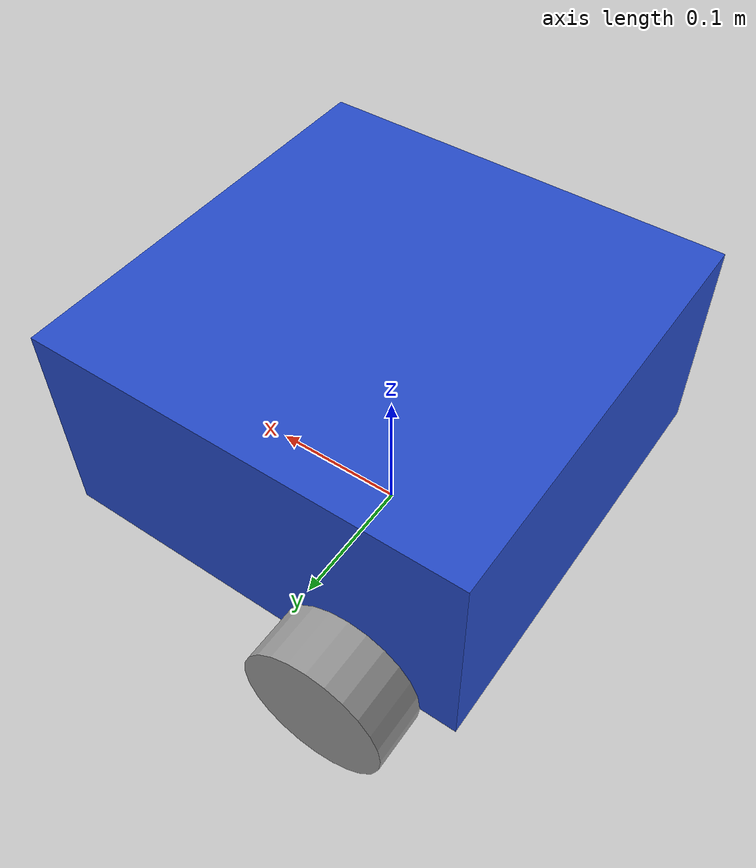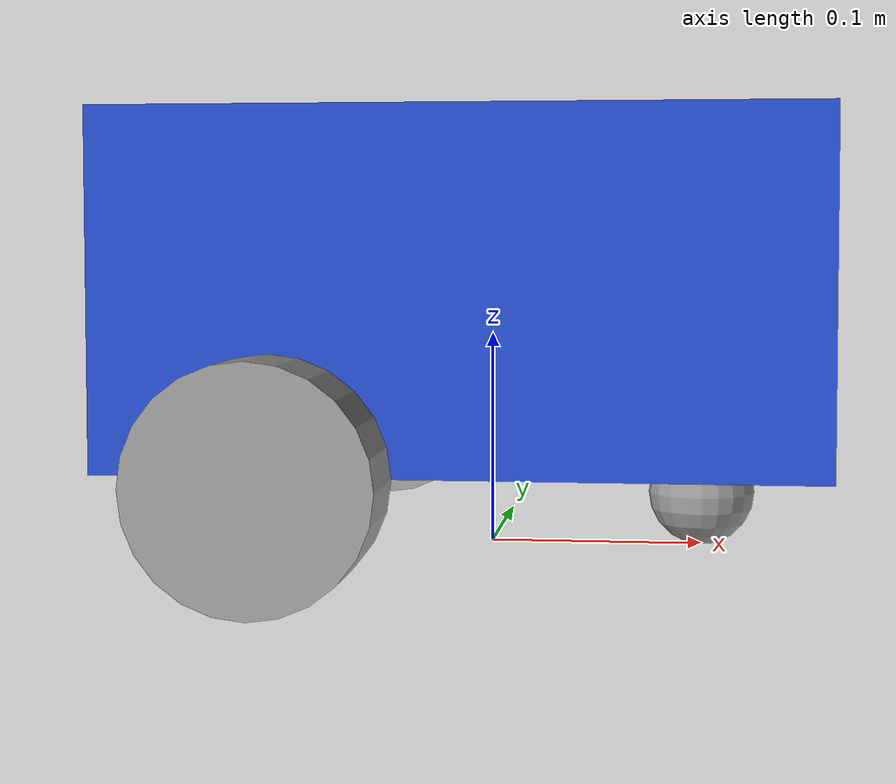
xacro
<?xml version="1.0"?>
<robot name="my_robot" xmlns:xacro="http://www.ros.org/wiki/xacro">

    <xacro:include filename="mobile_base.xacro" />
    <xacro:include filename="common_properties.xacro" />
    <xacro:include filename="gazebo_control.xacro" />

</robot>

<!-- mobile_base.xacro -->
<robot xmlns:xacro="http://www.ros.org/wiki/xacro">

    <xacro:property name="base_length" value="0.3" />
    <xacro:property name="base_width" value="0.3" />
    <xacro:property name="base_height" value="0.15" />
    <xacro:property name="wheel_radius" value="0.05" />
    <xacro:property name="wheel_length" value="0.04" />

    <xacro:macro name="box_inertia" params="m x y z o_xyz o_rpy">
        <inertial>
            <mass value="${m}" />
            <origin xyz="${o_xyz}" rpy="${o_rpy}" />
            <inertia ixx="${(m/12) * (y*y + z*z)}" ixy="0" ixz="0"
                     iyy="${(m/12) * (x*x + z*z)}" iyz="0"
                     izz="${(m/12) * (x*x + y*y)}" />
        </inertial>
    </xacro:macro>

    <xacro:macro name="cylinder_inertia" params="m r l o_xyz o_rpy">
        <inertial>
            <mass value="${m}" />
            <origin xyz="${o_xyz}" rpy="${o_rpy}" />
            <inertia ixx="${(m/12) * (3*r*r + l*l)}" ixy="0" ixz="0"
                     iyy="${(m/12) * (3*r*r + l*l)}" iyz="0"
                     izz="${(m/2) * (r*r)}" />
        </inertial>
    </xacro:macro>

    <xacro:macro name="sphere_inertia" params="m r o_xyz o_rpy">
        <inertial>
            <mass value="${m}" />
            <origin xyz="${o_xyz}" rpy="${o_rpy}" />
            <inertia ixx="${(2/5) * m * r * r}" ixy="0" ixz="0"
                     iyy="${(2/5) * m * r * r}" iyz="0"
                     izz="${(2/5) * m * r * r}" />
        </inertial>
    </xacro:macro>

    <link name="base_footprint" />

    <link name="chasis_link">
        <visual>
            <geometry>
                <box size="${base_length} ${base_width} ${base_height}" />
            </geometry>
            <origin xyz="0 0 ${base_height/2}" rpy="0 0 0" />
            <material name="blue"/>
        </visual>
        <collision>
            <geometry>
                <box size="${base_length} ${base_width} ${base_height}" />
            </geometry>
            <origin xyz="0 0 ${base_height/2}" rpy="0 0 0" />
        </collision>
        <xacro:box_inertia m="5.0"
                            x="${base_length}" y="${base_width}" z="${base_height}"
                            o_xyz="0 0 ${base_height/2}" o_rpy="0 0 0" />
    </link>

    <link name="right_wheel_link">
        <visual>
            <geometry>
                    <cylinder radius="${wheel_radius}" length="${wheel_length}" />
            </geometry>
            <origin xyz="0 0 0" rpy="${pi/2} 0 0" />
            <material name="grey" />
        </visual>
        <collision>
            <geometry>
                    <cylinder radius="${wheel_radius}" length="${wheel_length}" />
            </geometry>
            <origin xyz="0 0 0" rpy="${pi/2} 0 0" />
        </collision>
        <xacro:cylinder_inertia m="0.2"
                                r="${wheel_radius}" l="${wheel_length}"
                                o_xyz="0 0 0" o_rpy="${pi/2} 0 0" />
    </link>

    <link name="left_wheel_link">
        <visual>
            <geometry>
                    <cylinder radius="${wheel_radius}" length="${wheel_length}" />
            </geometry>
            <origin xyz="0 0 0" rpy="${pi/2} 0 0" />
            <material name="grey" />
        </visual>
        <collision>
            <geometry>
                    <cylinder radius="${wheel_radius}" length="${wheel_length}" />
            </geometry>
            <origin xyz="0 0 0" rpy="${pi/2} 0 0" />
        </collision>
        <xacro:cylinder_inertia m="0.2"
                                r="${wheel_radius}" l="${wheel_length}"
                                o_xyz="0 0 0" o_rpy="${pi/2} 0 0" />
    </link>

    <link name="caster_wheel_link">
        <visual>
            <geometry>
                <sphere radius="${wheel_radius/2}" />
            </geometry>
            <origin xyz="0 0 ${-wheel_radius/2}" rpy="0 0 0" />
            <material name="grey" />
        </visual>
        <collision>
            <geometry>
                <sphere radius="${wheel_radius/2}" />
            </geometry>
            <origin xyz="0 0 ${-wheel_radius/2}" rpy="0 0 0" />
        </collision>
        <xacro:sphere_inertia   m="0.2" r="${wheel_radius/2}"
                                o_xyz="0 0 ${-wheel_radius/2}" o_rpy="0 0 0" />
    </link>

    <joint name="base_chasis_joint" type="fixed">
        <parent link="base_footprint" />
        <child link="chasis_link" />
        <origin xyz="0 0 ${wheel_radius}" rpy="0 0 0" />
    </joint>

    <joint name="chasis_right_wheel_joint" type="continuous">
        <parent link="chasis_link" />
        <child link="right_wheel_link" />
        <origin xyz="${-base_length/4} ${-(base_width + wheel_length)/2} 0" rpy="0 0 0" />
        <axis xyz="0 1 0" />
    </joint>

    <joint name="chasis_left_wheel_joint" type="continuous">
        <parent link="chasis_link" />
        <child link="left_wheel_link" />
        <origin xyz="${-base_length/4} ${(base_width + wheel_length)/2} 0" rpy="0 0 0" />
        <axis xyz="0 1 0" />
    </joint>

    <joint name="chasis_caster_wheel_joint" type="fixed">
        <parent link="chasis_link" />
        <child link="caster_wheel_link" />
        <origin xyz="${base_length/3} 0 0" rpy="0 0 0" />
    </joint>

</robot>
